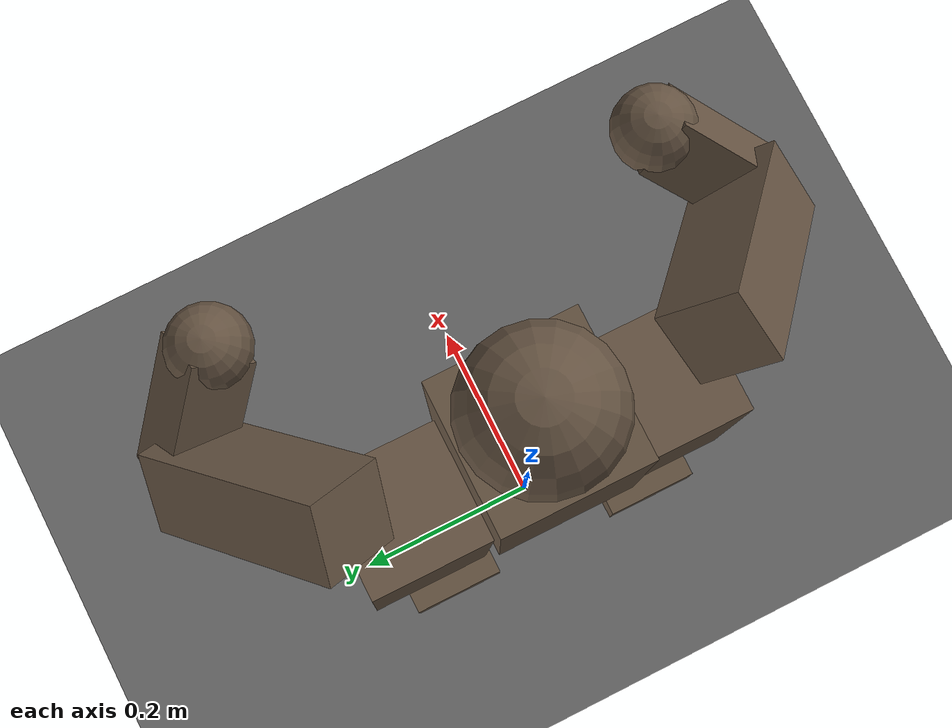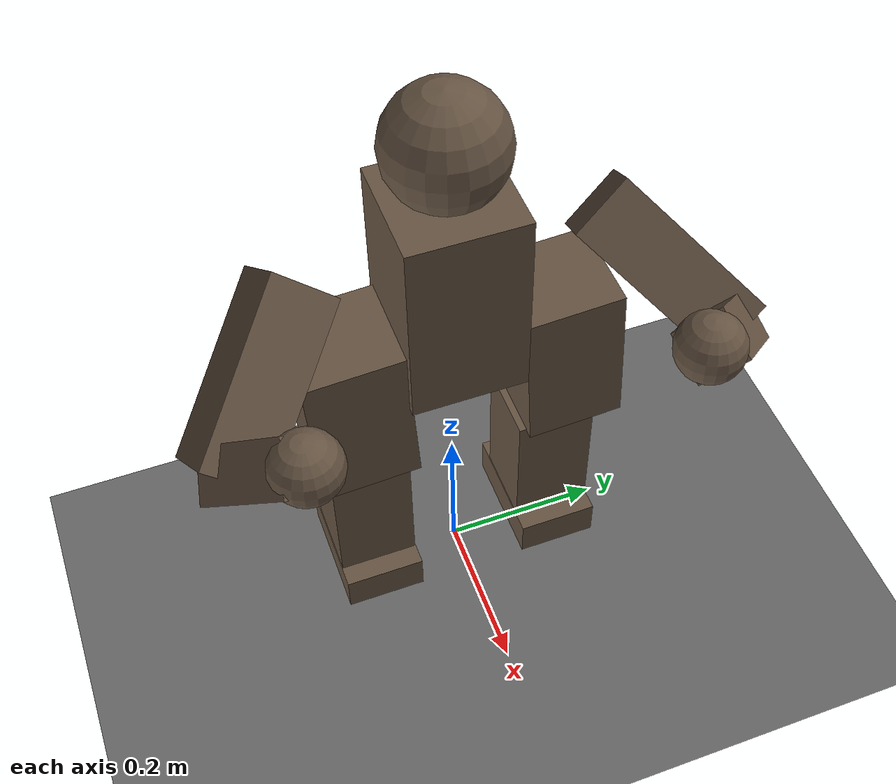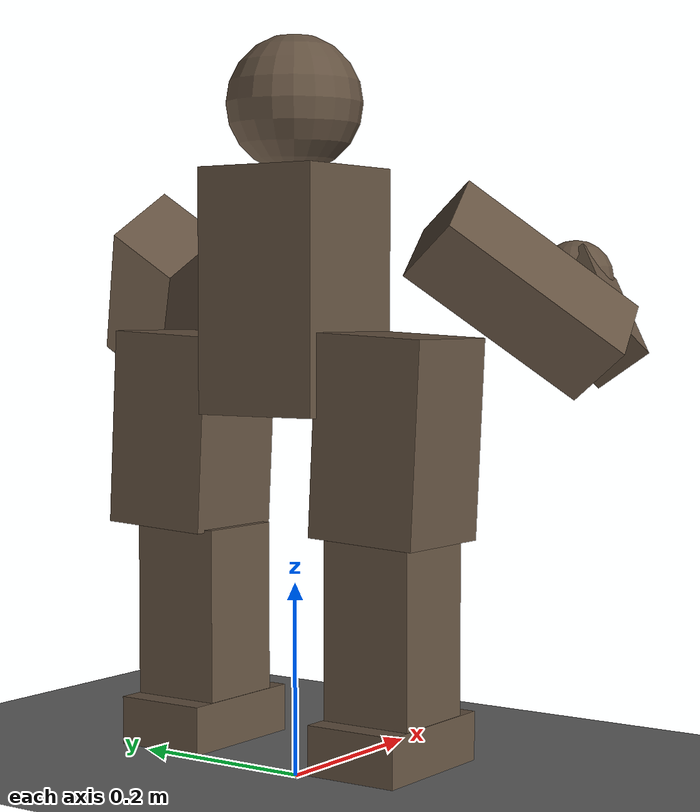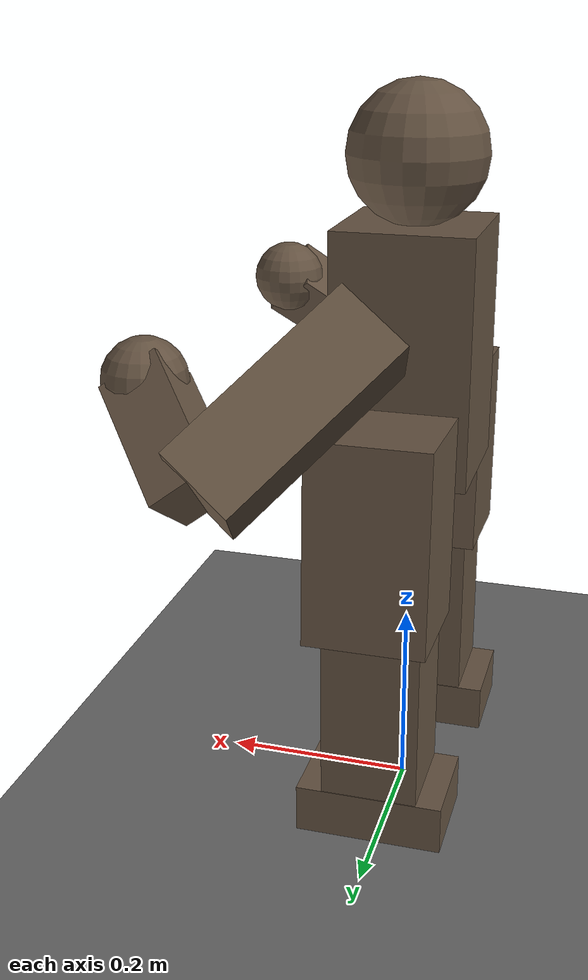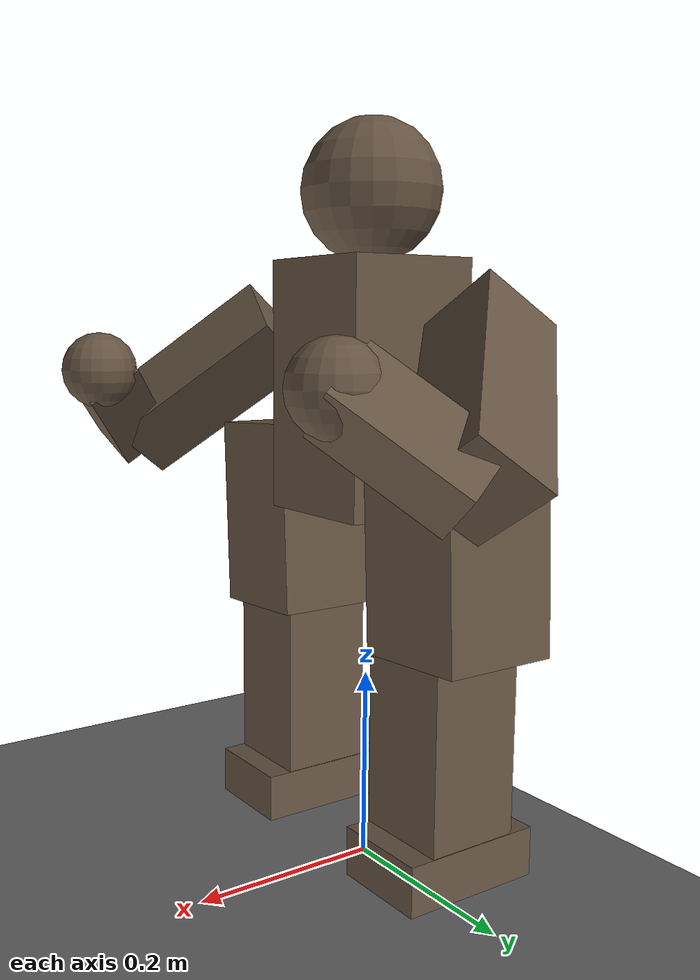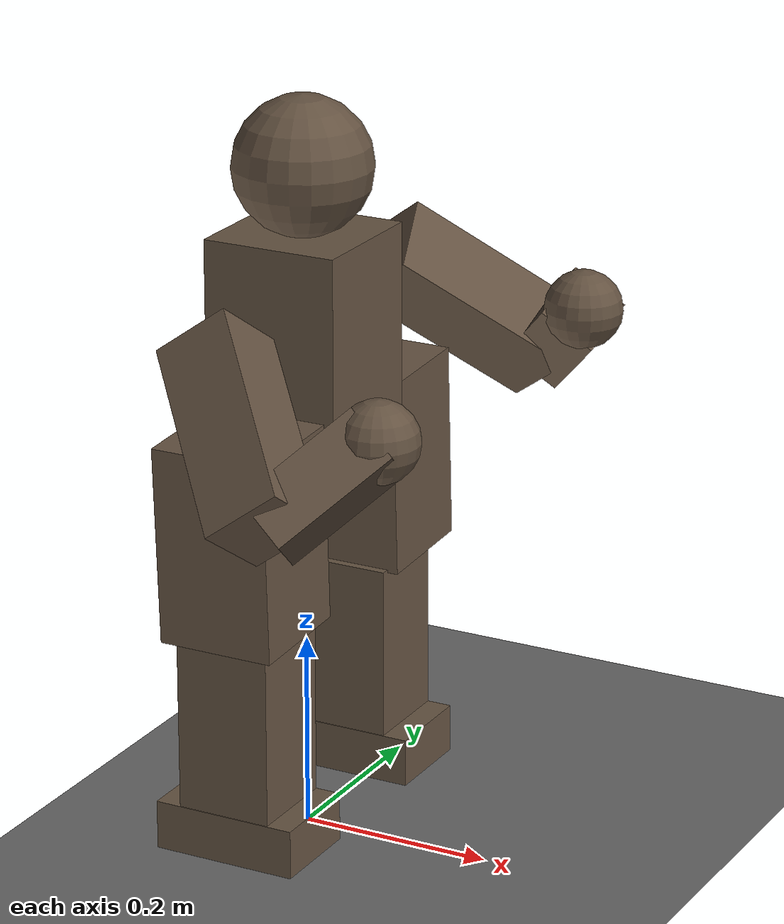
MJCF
<mujoco model="humanoid">
    <compiler angle="degree" inertiafromgeom="true"/>
    <default>
        <joint armature="1" damping="1" limited="true"/>
        <geom conaffinity="0" condim="3" contype="0" material="geom" rgba="0.4 0.33 0.26 1.0"/>
        <position kp="21.1" ctrlrange="-3.141592 3.141592"/>
    </default>
    <option iterations="8" timestep="0.003"/>
    <custom>
        <!-- brax custom params -->
        <numeric data="2500" name="constraint_limit_stiffness"/>
        <numeric data="27000" name="constraint_stiffness"/>
        <numeric data="30" name="constraint_ang_damping"/>
        <numeric data="80" name="constraint_vel_damping"/>
        <numeric data="-0.05" name="ang_damping"/>
        <numeric data="0.5" name="joint_scale_pos"/>
        <numeric data="0.1" name="joint_scale_ang"/>
        <numeric data="0" name="spring_mass_scale"/>
        <numeric data="1" name="spring_inertia_scale"/>
        <numeric data="20" name="matrix_inv_iterations"/>
        <numeric data="15" name="solver_maxls"/>
    </custom>
    <size nkey="5" nuser_geom="1"/>
    <visual>
        <map fogend="5" fogstart="3"/>
    </visual>
    <asset>
        <texture builtin="gradient" height="100" rgb1=".4 .5 .6" rgb2="0 0 0" type="skybox" width="100"/>
        <texture builtin="flat" height="1278" mark="cross" markrgb="1 1 1" name="texgeom" random="0.01" rgb1="0.8 0.6 0.4" rgb2="0.8 0.6 0.4" type="cube" width="127"/>
        <texture builtin="checker" height="100" name="texplane" rgb1="0 0 0" rgb2="0.8 0.8 0.8" type="2d" width="100"/>
        <material name="MatPlane" reflectance="0.5" shininess="1" specular="1" texrepeat="60 60" texture="texplane"/>
        <material name="geom" texture="texgeom" texuniform="true"/>
    </asset>
    <worldbody>
        <light cutoff="100" diffuse="1 1 1" dir="-0 0 -1.3" directional="true" exponent="1" pos="0 0 1.3" specular=".1 .1 .1"/>
        <geom conaffinity="1" condim="3" friction="1 .1 .1" material="MatPlane" name="floor" pos="0 0 0" size="20 20 0.125" type="plane" rgba="0.5 0.5 0.5 1.0"/>
        <body name="torso" pos="0 0 0.5">
            <site name="imu"/>
            <camera name="track" mode="trackcom" pos="0 -4 0" xyaxes="1 0 0 0 0 1"/>
            <joint armature="0" damping="0" limited="false" name="root" pos="0 0 0" stiffness="0" type="free"/>
            <geom contype="1" fromto="0 0 -0.125 0 0 0.125" name="torso1" size="0.07" type="box"/>
            <geom contype="1" name="head" pos="0 0 .19" size=".07" type="sphere" user="258"/>
            <!-- Right Thigh - Directly connected to torso -->
            <body name="right_thigh" pos="0 -0.13 -0.125">
                <joint armature="0.01" axis="1 0 0" damping="5" name="right_hip_x" pos="0 0 0" range="-25 5" stiffness="3" type="hinge"/>
                <joint armature="0.01" axis="0 0 1" damping="5" name="right_hip_z" pos="0 0 0" range="-60 35" stiffness="3" type="hinge"/>
                <joint armature="0.0080" axis="0 1 0" damping="5" name="right_hip_y" pos="0 0 0" range="-110 20" stiffness="3" type="hinge"/>
                <geom contype="1" fromto="0 0 0.081 0 0.01 -.121" name="right_thigh1" size="0.06" type="box"/>
                <body name="right_shin" pos="0 0.01 -0.121">
                    <joint armature="0.0060" axis="0 -1 0" name="right_knee" pos="0 0 .02" range="-90 0" type="hinge"/>
                    <geom contype="1" fromto="0 0 0 0 0 -.202" name="right_shin1" size="0.049" type="box"/>
                    <body name="right_foot" pos="0 0 -0.102">
                        <site name="right_foot"/>
                        <joint armature="0.01" axis="0 -1 0" damping="5" name="right_foot" pos="0 0 0" range="-25 25" stiffness="3" type="hinge"/>
                        <geom contype="1" name="right_foot" pos="0 0 -0.102" size="0.075 0.05 0.025" type="box" user="0"/>
                    </body>
                </body>
            </body>
            <!-- Left Thigh - Directly connected to torso -->
            <body name="left_thigh" pos="0 0.13 -0.125">
                <joint armature="0.01" axis="-1 0 0" damping="5" name="left_hip_x" pos="0 0 0" range="-25 5" stiffness="3" type="hinge"/>
                <joint armature="0.01" axis="0 0 -1" damping="5" name="left_hip_z" pos="0 0 0" range="-60 35" stiffness="3" type="hinge"/>
                <joint armature="0.01" axis="0 1 0" damping="5" name="left_hip_y" pos="0 0 0" range="-110 20" stiffness="3" type="hinge"/>
                <geom contype="1" fromto="0 0 0.081 0 0.01 -.121" name="left_thigh1" size="0.06" type="box"/>
                <body name="left_shin" pos="0 -0.01 -0.121">
                    <joint armature="0.0060" axis="0 -1 0" name="left_knee" pos="0 0 .02" range="-90 0" stiffness="3" type="hinge"/>
                    <geom contype="1" fromto="0 0 0 0 0 -.202" name="left_shin1" size="0.049" type="box"/>
                    <body name="left_foot" pos="0 0 -0.102">
                        <site name="left_foot"/>
                        <joint armature="0.01" axis="0 -1 0" damping="5" name="left_foot" pos="0 0 0" range="-25 25" stiffness="3" type="hinge"/>
                        <geom contype="1" name="left_foot" pos="0 0 -0.102" size="0.075 0.05 0.025" type="box" user="0"/>
                    </body>
                </body>
            </body>
            <body name="right_upper_arm" pos="0 -0.17 0.06">
                <joint armature="0.0068" axis="2 1 1" name="right_shoulder1" pos="0 0 0" range="-85 40" stiffness="3" type="hinge"/>
                <joint armature="0.0051" axis="0 -1 1" name="right_shoulder2" pos="0 0 0" range="-85 40" stiffness="3" type="hinge"/>
                <geom fromto="0 0 0 .122 -.122 -.122" name="right_uarm1" size="0.04 0.16" type="box"/>
                <body name="right_lower_arm" pos=".122 -.122 -.122">
                    <joint armature="0.0028" axis="0 -1 1" name="right_elbow" pos="0 0 0" range="-90 50" stiffness="3" type="hinge"/>
                    <geom contype="1" fromto="0 0 0 .075 .075 .075" name="right_larm" size="0.031" type="box"/>
                    <geom contype="1" name="right_hand" pos=".075 .075 .075" size="0.04" type="sphere"/>
                </body>
            </body>
            <body name="left_upper_arm" pos="0 0.17 0.06">
                <joint armature="0.0068" axis="2 -1 1" name="left_shoulder1" pos="0 0 0" range="-40 85" stiffness="3" type="hinge"/>
                <joint armature="0.0051" axis="0 1 1" name="left_shoulder2" pos="0 0 0" range="-40 85" stiffness="3" type="hinge"/>
                <geom contype="1" fromto="0 0 0 .122 .122 -.122" name="left_uarm1" size="0.04 0.16" type="box"/>
                <body name="left_lower_arm" pos=".122 .122 -.122">
                    <joint armature="0.0028" axis="0 -1 -1" name="left_elbow" pos="0 0 0" range="-90 50" stiffness="3" type="hinge"/>
                    <geom contype="1" fromto="0 0 0 .075 -.075 .075" name="left_larm" size="0.031" type="box"/>
                    <geom contype="1" name="left_hand" pos=".075 -.075 .075" size="0.04" type="sphere"/>
                </body>
            </body>
        </body>
    </worldbody>
    <actuator>
        <position joint="right_hip_x" name="right_hip_x"/>
        <position joint="right_hip_z" name="right_hip_z"/>
        <position joint="right_hip_y" name="right_hip_y"/>
        <position joint="right_knee" name="right_knee"/>
        <position joint="left_hip_x" name="left_hip_x"/>
        <position joint="left_hip_z" name="left_hip_z"/>
        <position joint="left_hip_y" name="left_hip_y"/>
        <position joint="left_knee" name="left_knee"/>
        <position joint="right_shoulder1" name="right_shoulder1"/>
        <position joint="right_shoulder2" name="right_shoulder2"/>
        <position joint="right_elbow" name="right_elbow"/>
        <position joint="left_shoulder1" name="left_shoulder1"/>
        <position joint="left_shoulder2" name="left_shoulder2"/>
        <position joint="left_elbow" name="left_elbow"/>
        <position joint="left_foot" name="left_foot"/>
        <position joint="right_foot" name="right_foot"/>
    </actuator>
    <sensor>
        <framepos objtype="site" objname="imu" name="position"/>
        <gyro site="imu" name="gyro"/>
        <velocimeter site="imu" name="local_linvel"/>
        <accelerometer site="imu" name="accelerometer"/>
        <framezaxis objtype="site" objname="imu" name="upvector"/>
        <framexaxis objtype="site" objname="imu" name="forwardvector"/>
        <framelinvel objtype="site" objname="imu" name="global_linvel"/>
        <frameangvel objtype="site" objname="imu" name="global_angvel"/>
        <framequat objtype="site" objname="imu" name="orientation"/>
        <!-- Feet velocity sensors (global). -->
        <!-- Foot force sensors. -->
        <force site="left_foot" name="left_foot_force"/>
        <force site="right_foot" name="right_foot_force"/>
    </sensor>
</mujoco>

<!--
add mass to links
change links to be prisms -->
